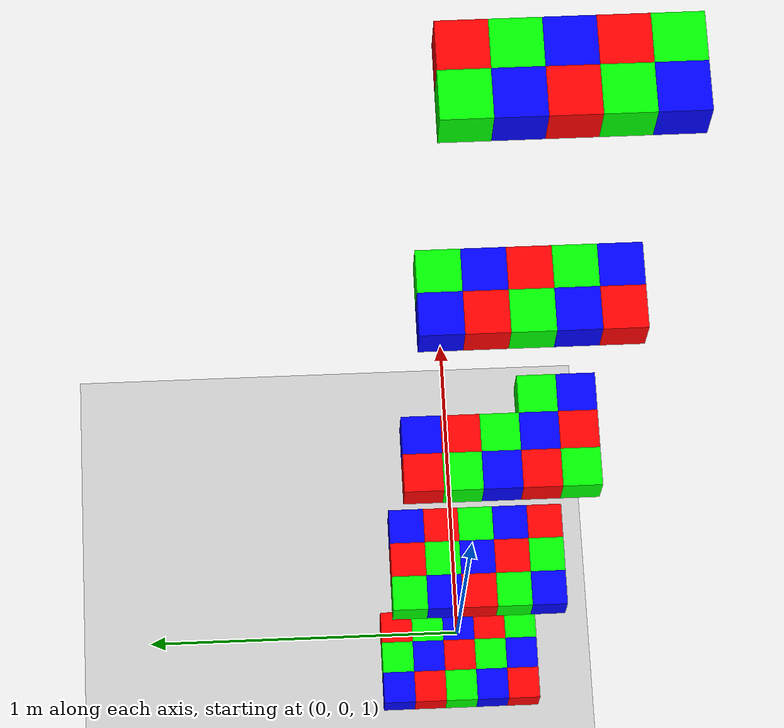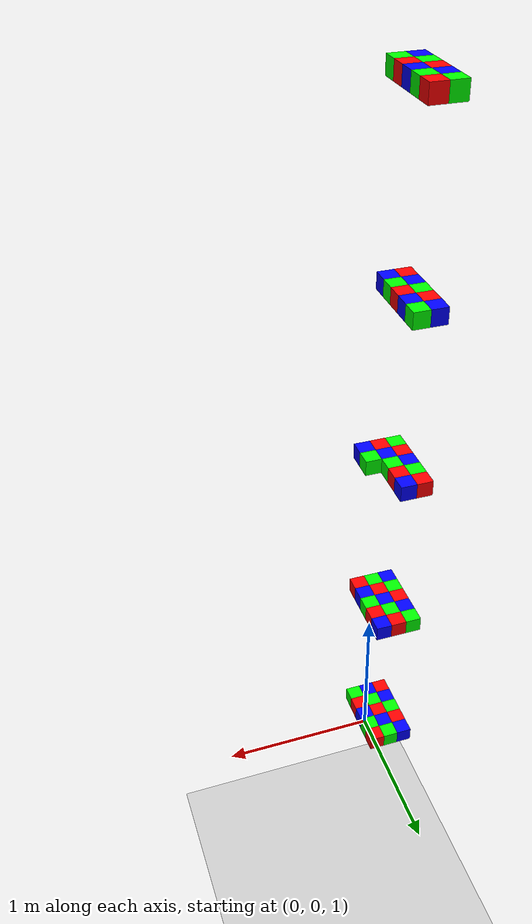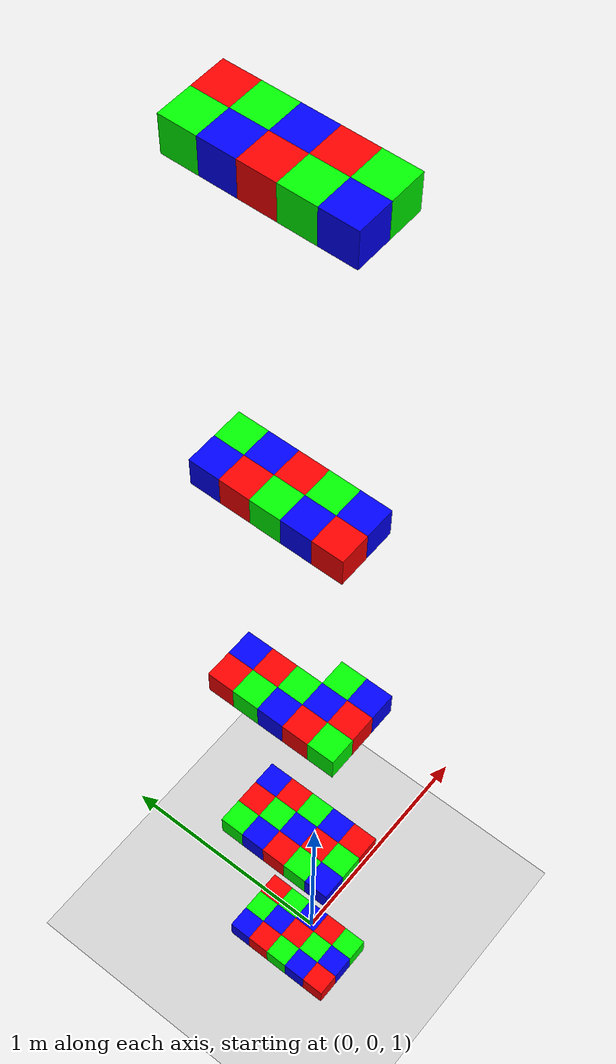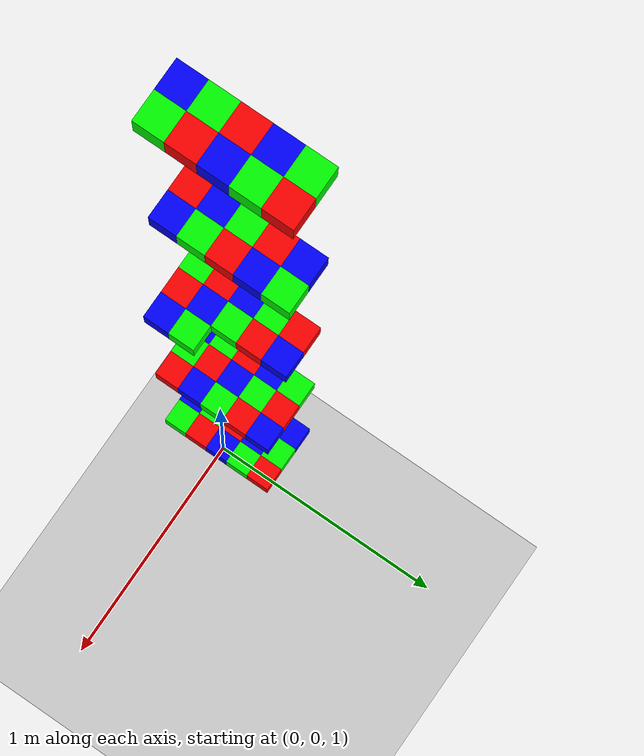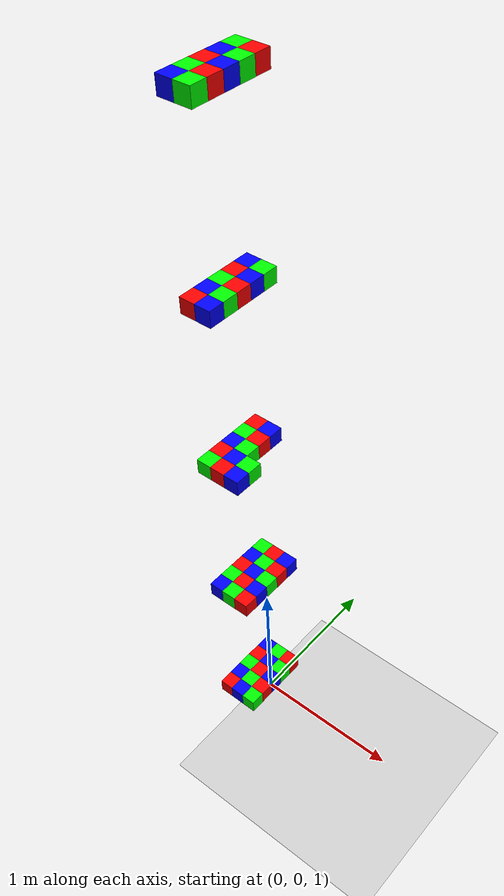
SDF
<sdf version="1.12">
 <world name="boxes_stack">
  <model name="ground_plane">
   <static>true</static>
   <link name="link">
    <collision name="collision"><geometry><plane><normal>0 0 1</normal></plane></geometry></collision>
    <visual name="visual">
     <geometry><plane><normal>0 0 1</normal><size>100 100</size></plane></geometry>
     <material>
      <ambient>0.8 0.8 0.8 1</ambient>
      <diffuse>0.8 0.8 0.8 1</diffuse>
      <specular>0.8 0.8 0.8 1</specular>
     </material>
    </visual>
   </link>
  </model>
  <model name="box_0">
   <pose>-0.2 -0.2 1.05 0 0 0</pose>
   <link name="box_link">
    <inertial auto="true"/>
    <collision name="box_collision">
     <density>1000</density>
     <geometry><box><size>0.1 0.1 0.1</size></box></geometry>
    </collision>
    <visual name="box_visual">
     <geometry><box><size>0.1 0.1 0.1</size></box></geometry>
     <material>
      <ambient>1 0 0 1</ambient>
      <diffuse>1 0 0 1</diffuse>
      <specular>1 1 1 1</specular>
      <pbr><metal><metalness>0.1</metalness><roughness>0.3</roughness></metal></pbr>
     </material>
    </visual>
   </link>
  </model>
  <model name="box_1">
   <pose>-0.2 -0.1 1.05 0 0 0</pose>
   <link name="box_link">
    <inertial auto="true"/>
    <collision name="box_collision">
     <density>1000</density>
     <geometry><box><size>0.1 0.1 0.1</size></box></geometry>
    </collision>
    <visual name="box_visual">
     <geometry><box><size>0.1 0.1 0.1</size></box></geometry>
     <material>
      <ambient>0 0 1 1</ambient>
      <diffuse>0 0 1 1</diffuse>
      <specular>1 1 1 1</specular>
      <pbr><metal><metalness>0.1</metalness><roughness>0.3</roughness></metal></pbr>
     </material>
    </visual>
   </link>
  </model>
  <model name="box_2">
   <pose>-0.2 0 1.05 0 0 0</pose>
   <link name="box_link">
    <inertial auto="true"/>
    <collision name="box_collision">
     <density>1000</density>
     <geometry><box><size>0.1 0.1 0.1</size></box></geometry>
    </collision>
    <visual name="box_visual">
     <geometry><box><size>0.1 0.1 0.1</size></box></geometry>
     <material>
      <ambient>0 1 0 1</ambient>
      <diffuse>0 1 0 1</diffuse>
      <specular>1 1 1 1</specular>
      <pbr><metal><metalness>0.1</metalness><roughness>0.3</roughness></metal></pbr>
     </material>
    </visual>
   </link>
  </model>
  <model name="box_3">
   <pose>-0.2 0.1 1.05 0 0 0</pose>
   <link name="box_link">
    <inertial auto="true"/>
    <collision name="box_collision">
     <density>1000</density>
     <geometry><box><size>0.1 0.1 0.1</size></box></geometry>
    </collision>
    <visual name="box_visual">
     <geometry><box><size>0.1 0.1 0.1</size></box></geometry>
     <material>
      <ambient>1 0 0 1</ambient>
      <diffuse>1 0 0 1</diffuse>
      <specular>1 1 1 1</specular>
      <pbr><metal><metalness>0.1</metalness><roughness>0.3</roughness></metal></pbr>
     </material>
    </visual>
   </link>
  </model>
  <model name="box_4">
   <pose>-0.2 0.2 1.05 0 0 0</pose>
   <link name="box_link">
    <inertial auto="true"/>
    <collision name="box_collision">
     <density>1000</density>
     <geometry><box><size>0.1 0.1 0.1</size></box></geometry>
    </collision>
    <visual name="box_visual">
     <geometry><box><size>0.1 0.1 0.1</size></box></geometry>
     <material>
      <ambient>0 0 1 1</ambient>
      <diffuse>0 0 1 1</diffuse>
      <specular>1 1 1 1</specular>
      <pbr><metal><metalness>0.1</metalness><roughness>0.3</roughness></metal></pbr>
     </material>
    </visual>
   </link>
  </model>
  <model name="box_5">
   <pose>-0.1 -0.2 1.05 0 0 0</pose>
   <link name="box_link">
    <inertial auto="true"/>
    <collision name="box_collision">
     <density>1000</density>
     <geometry><box><size>0.1 0.1 0.1</size></box></geometry>
    </collision>
    <visual name="box_visual">
     <geometry><box><size>0.1 0.1 0.1</size></box></geometry>
     <material>
      <ambient>0 0 1 1</ambient>
      <diffuse>0 0 1 1</diffuse>
      <specular>1 1 1 1</specular>
      <pbr><metal><metalness>0.1</metalness><roughness>0.3</roughness></metal></pbr>
     </material>
    </visual>
   </link>
  </model>
  <model name="box_6">
   <pose>-0.1 -0.1 1.05 0 0 0</pose>
   <link name="box_link">
    <inertial auto="true"/>
    <collision name="box_collision">
     <density>1000</density>
     <geometry><box><size>0.1 0.1 0.1</size></box></geometry>
    </collision>
    <visual name="box_visual">
     <geometry><box><size>0.1 0.1 0.1</size></box></geometry>
     <material>
      <ambient>0 1 0 1</ambient>
      <diffuse>0 1 0 1</diffuse>
      <specular>1 1 1 1</specular>
      <pbr><metal><metalness>0.1</metalness><roughness>0.3</roughness></metal></pbr>
     </material>
    </visual>
   </link>
  </model>
  <model name="box_7">
   <pose>-0.1 0 1.05 0 0 0</pose>
   <link name="box_link">
    <inertial auto="true"/>
    <collision name="box_collision">
     <density>1000</density>
     <geometry><box><size>0.1 0.1 0.1</size></box></geometry>
    </collision>
    <visual name="box_visual">
     <geometry><box><size>0.1 0.1 0.1</size></box></geometry>
     <material>
      <ambient>1 0 0 1</ambient>
      <diffuse>1 0 0 1</diffuse>
      <specular>1 1 1 1</specular>
      <pbr><metal><metalness>0.1</metalness><roughness>0.3</roughness></metal></pbr>
     </material>
    </visual>
   </link>
  </model>
  <model name="box_8">
   <pose>-0.1 0.1 1.05 0 0 0</pose>
   <link name="box_link">
    <inertial auto="true"/>
    <collision name="box_collision">
     <density>1000</density>
     <geometry><box><size>0.1 0.1 0.1</size></box></geometry>
    </collision>
    <visual name="box_visual">
     <geometry><box><size>0.1 0.1 0.1</size></box></geometry>
     <material>
      <ambient>0 0 1 1</ambient>
      <diffuse>0 0 1 1</diffuse>
      <specular>1 1 1 1</specular>
      <pbr><metal><metalness>0.1</metalness><roughness>0.3</roughness></metal></pbr>
     </material>
    </visual>
   </link>
  </model>
  <model name="box_9">
   <pose>-0.1 0.2 1.05 0 0 0</pose>
   <link name="box_link">
    <inertial auto="true"/>
    <collision name="box_collision">
     <density>1000</density>
     <geometry><box><size>0.1 0.1 0.1</size></box></geometry>
    </collision>
    <visual name="box_visual">
     <geometry><box><size>0.1 0.1 0.1</size></box></geometry>
     <material>
      <ambient>0 1 0 1</ambient>
      <diffuse>0 1 0 1</diffuse>
      <specular>1 1 1 1</specular>
      <pbr><metal><metalness>0.1</metalness><roughness>0.3</roughness></metal></pbr>
     </material>
    </visual>
   </link>
  </model>
  <model name="box_10">
   <pose>0 -0.2 1.05 0 0 0</pose>
   <link name="box_link">
    <inertial auto="true"/>
    <collision name="box_collision">
     <density>1000</density>
     <geometry><box><size>0.1 0.1 0.1</size></box></geometry>
    </collision>
    <visual name="box_visual">
     <geometry><box><size>0.1 0.1 0.1</size></box></geometry>
     <material>
      <ambient>0 1 0 1</ambient>
      <diffuse>0 1 0 1</diffuse>
      <specular>1 1 1 1</specular>
      <pbr><metal><metalness>0.1</metalness><roughness>0.3</roughness></metal></pbr>
     </material>
    </visual>
   </link>
  </model>
  <model name="box_11">
   <pose>0 -0.1 1.05 0 0 0</pose>
   <link name="box_link">
    <inertial auto="true"/>
    <collision name="box_collision">
     <density>1000</density>
     <geometry><box><size>0.1 0.1 0.1</size></box></geometry>
    </collision>
    <visual name="box_visual">
     <geometry><box><size>0.1 0.1 0.1</size></box></geometry>
     <material>
      <ambient>1 0 0 1</ambient>
      <diffuse>1 0 0 1</diffuse>
      <specular>1 1 1 1</specular>
      <pbr><metal><metalness>0.1</metalness><roughness>0.3</roughness></metal></pbr>
     </material>
    </visual>
   </link>
  </model>
  <model name="box_12">
   <pose>0 0 1.05 0 0 0</pose>
   <link name="box_link">
    <inertial auto="true"/>
    <collision name="box_collision">
     <density>1000</density>
     <geometry><box><size>0.1 0.1 0.1</size></box></geometry>
    </collision>
    <visual name="box_visual">
     <geometry><box><size>0.1 0.1 0.1</size></box></geometry>
     <material>
      <ambient>0 0 1 1</ambient>
      <diffuse>0 0 1 1</diffuse>
      <specular>1 1 1 1</specular>
      <pbr><metal><metalness>0.1</metalness><roughness>0.3</roughness></metal></pbr>
     </material>
    </visual>
   </link>
  </model>
  <model name="box_13">
   <pose>0 0.1 1.05 0 0 0</pose>
   <link name="box_link">
    <inertial auto="true"/>
    <collision name="box_collision">
     <density>1000</density>
     <geometry><box><size>0.1 0.1 0.1</size></box></geometry>
    </collision>
    <visual name="box_visual">
     <geometry><box><size>0.1 0.1 0.1</size></box></geometry>
     <material>
      <ambient>0 1 0 1</ambient>
      <diffuse>0 1 0 1</diffuse>
      <specular>1 1 1 1</specular>
      <pbr><metal><metalness>0.1</metalness><roughness>0.3</roughness></metal></pbr>
     </material>
    </visual>
   </link>
  </model>
  <model name="box_14">
   <pose>0 0.2 1.05 0 0 0</pose>
   <link name="box_link">
    <inertial auto="true"/>
    <collision name="box_collision">
     <density>1000</density>
     <geometry><box><size>0.1 0.1 0.1</size></box></geometry>
    </collision>
    <visual name="box_visual">
     <geometry><box><size>0.1 0.1 0.1</size></box></geometry>
     <material>
      <ambient>1 0 0 1</ambient>
      <diffuse>1 0 0 1</diffuse>
      <specular>1 1 1 1</specular>
      <pbr><metal><metalness>0.1</metalness><roughness>0.3</roughness></metal></pbr>
     </material>
    </visual>
   </link>
  </model>
  <model name="box_25">
   <pose>-0.2 -0.2 2.15 0 0 0</pose>
   <link name="box_link">
    <inertial auto="true"/>
    <collision name="box_collision">
     <density>1000</density>
     <geometry><box><size>0.1 0.1 0.1</size></box></geometry>
    </collision>
    <visual name="box_visual">
     <geometry><box><size>0.1 0.1 0.1</size></box></geometry>
     <material>
      <ambient>0 0 1 1</ambient>
      <diffuse>0 0 1 1</diffuse>
      <specular>1 1 1 1</specular>
      <pbr><metal><metalness>0.1</metalness><roughness>0.3</roughness></metal></pbr>
     </material>
    </visual>
   </link>
  </model>
  <model name="box_26">
   <pose>-0.2 -0.1 2.15 0 0 0</pose>
   <link name="box_link">
    <inertial auto="true"/>
    <collision name="box_collision">
     <density>1000</density>
     <geometry><box><size>0.1 0.1 0.1</size></box></geometry>
    </collision>
    <visual name="box_visual">
     <geometry><box><size>0.1 0.1 0.1</size></box></geometry>
     <material>
      <ambient>0 1 0 1</ambient>
      <diffuse>0 1 0 1</diffuse>
      <specular>1 1 1 1</specular>
      <pbr><metal><metalness>0.1</metalness><roughness>0.3</roughness></metal></pbr>
     </material>
    </visual>
   </link>
  </model>
  <model name="box_27">
   <pose>-0.2 0 2.15 0 0 0</pose>
   <link name="box_link">
    <inertial auto="true"/>
    <collision name="box_collision">
     <density>1000</density>
     <geometry><box><size>0.1 0.1 0.1</size></box></geometry>
    </collision>
    <visual name="box_visual">
     <geometry><box><size>0.1 0.1 0.1</size></box></geometry>
     <material>
      <ambient>1 0 0 1</ambient>
      <diffuse>1 0 0 1</diffuse>
      <specular>1 1 1 1</specular>
      <pbr><metal><metalness>0.1</metalness><roughness>0.3</roughness></metal></pbr>
     </material>
    </visual>
   </link>
  </model>
  <model name="box_28">
   <pose>-0.2 0.1 2.15 0 0 0</pose>
   <link name="box_link">
    <inertial auto="true"/>
    <collision name="box_collision">
     <density>1000</density>
     <geometry><box><size>0.1 0.1 0.1</size></box></geometry>
    </collision>
    <visual name="box_visual">
     <geometry><box><size>0.1 0.1 0.1</size></box></geometry>
     <material>
      <ambient>0 0 1 1</ambient>
      <diffuse>0 0 1 1</diffuse>
      <specular>1 1 1 1</specular>
      <pbr><metal><metalness>0.1</metalness><roughness>0.3</roughness></metal></pbr>
     </material>
    </visual>
   </link>
  </model>
  <model name="box_29">
   <pose>-0.2 0.2 2.15 0 0 0</pose>
   <link name="box_link">
    <inertial auto="true"/>
    <collision name="box_collision">
     <density>1000</density>
     <geometry><box><size>0.1 0.1 0.1</size></box></geometry>
    </collision>
    <visual name="box_visual">
     <geometry><box><size>0.1 0.1 0.1</size></box></geometry>
     <material>
      <ambient>0 1 0 1</ambient>
      <diffuse>0 1 0 1</diffuse>
      <specular>1 1 1 1</specular>
      <pbr><metal><metalness>0.1</metalness><roughness>0.3</roughness></metal></pbr>
     </material>
    </visual>
   </link>
  </model>
  <model name="box_30">
   <pose>-0.1 -0.2 2.15 0 0 0</pose>
   <link name="box_link">
    <inertial auto="true"/>
    <collision name="box_collision">
     <density>1000</density>
     <geometry><box><size>0.1 0.1 0.1</size></box></geometry>
    </collision>
    <visual name="box_visual">
     <geometry><box><size>0.1 0.1 0.1</size></box></geometry>
     <material>
      <ambient>0 1 0 1</ambient>
      <diffuse>0 1 0 1</diffuse>
      <specular>1 1 1 1</specular>
      <pbr><metal><metalness>0.1</metalness><roughness>0.3</roughness></metal></pbr>
     </material>
    </visual>
   </link>
  </model>
  <model name="box_31">
   <pose>-0.1 -0.1 2.15 0 0 0</pose>
   <link name="box_link">
    <inertial auto="true"/>
    <collision name="box_collision">
     <density>1000</density>
     <geometry><box><size>0.1 0.1 0.1</size></box></geometry>
    </collision>
    <visual name="box_visual">
     <geometry><box><size>0.1 0.1 0.1</size></box></geometry>
     <material>
      <ambient>1 0 0 1</ambient>
      <diffuse>1 0 0 1</diffuse>
      <specular>1 1 1 1</specular>
      <pbr><metal><metalness>0.1</metalness><roughness>0.3</roughness></metal></pbr>
     </material>
    </visual>
   </link>
  </model>
  <model name="box_32">
   <pose>-0.1 0 2.15 0 0 0</pose>
   <link name="box_link">
    <inertial auto="true"/>
    <collision name="box_collision">
     <density>1000</density>
     <geometry><box><size>0.1 0.1 0.1</size></box></geometry>
    </collision>
    <visual name="box_visual">
     <geometry><box><size>0.1 0.1 0.1</size></box></geometry>
     <material>
      <ambient>0 0 1 1</ambient>
      <diffuse>0 0 1 1</diffuse>
      <specular>1 1 1 1</specular>
      <pbr><metal><metalness>0.1</metalness><roughness>0.3</roughness></metal></pbr>
     </material>
    </visual>
   </link>
  </model>
  <model name="box_33">
   <pose>-0.1 0.1 2.15 0 0 0</pose>
   <link name="box_link">
    <inertial auto="true"/>
    <collision name="box_collision">
     <density>1000</density>
     <geometry><box><size>0.1 0.1 0.1</size></box></geometry>
    </collision>
    <visual name="box_visual">
     <geometry><box><size>0.1 0.1 0.1</size></box></geometry>
     <material>
      <ambient>0 1 0 1</ambient>
      <diffuse>0 1 0 1</diffuse>
      <specular>1 1 1 1</specular>
      <pbr><metal><metalness>0.1</metalness><roughness>0.3</roughness></metal></pbr>
     </material>
    </visual>
   </link>
  </model>
  <model name="box_34">
   <pose>-0.1 0.2 2.15 0 0 0</pose>
   <link name="box_link">
    <inertial auto="true"/>
    <collision name="box_collision">
     <density>1000</density>
     <geometry><box><size>0.1 0.1 0.1</size></box></geometry>
    </collision>
    <visual name="box_visual">
     <geometry><box><size>0.1 0.1 0.1</size></box></geometry>
     <material>
      <ambient>1 0 0 1</ambient>
      <diffuse>1 0 0 1</diffuse>
      <specular>1 1 1 1</specular>
      <pbr><metal><metalness>0.1</metalness><roughness>0.3</roughness></metal></pbr>
     </material>
    </visual>
   </link>
  </model>
  <model name="box_35">
   <pose>0 -0.2 2.15 0 0 0</pose>
   <link name="box_link">
    <inertial auto="true"/>
    <collision name="box_collision">
     <density>1000</density>
     <geometry><box><size>0.1 0.1 0.1</size></box></geometry>
    </collision>
    <visual name="box_visual">
     <geometry><box><size>0.1 0.1 0.1</size></box></geometry>
     <material>
      <ambient>1 0 0 1</ambient>
      <diffuse>1 0 0 1</diffuse>
      <specular>1 1 1 1</specular>
      <pbr><metal><metalness>0.1</metalness><roughness>0.3</roughness></metal></pbr>
     </material>
    </visual>
   </link>
  </model>
  <model name="box_36">
   <pose>0 -0.1 2.15 0 0 0</pose>
   <link name="box_link">
    <inertial auto="true"/>
    <collision name="box_collision">
     <density>1000</density>
     <geometry><box><size>0.1 0.1 0.1</size></box></geometry>
    </collision>
    <visual name="box_visual">
     <geometry><box><size>0.1 0.1 0.1</size></box></geometry>
     <material>
      <ambient>0 0 1 1</ambient>
      <diffuse>0 0 1 1</diffuse>
      <specular>1 1 1 1</specular>
      <pbr><metal><metalness>0.1</metalness><roughness>0.3</roughness></metal></pbr>
     </material>
    </visual>
   </link>
  </model>
  <model name="box_37">
   <pose>0 0 2.15 0 0 0</pose>
   <link name="box_link">
    <inertial auto="true"/>
    <collision name="box_collision">
     <density>1000</density>
     <geometry><box><size>0.1 0.1 0.1</size></box></geometry>
    </collision>
    <visual name="box_visual">
     <geometry><box><size>0.1 0.1 0.1</size></box></geometry>
     <material>
      <ambient>0 1 0 1</ambient>
      <diffuse>0 1 0 1</diffuse>
      <specular>1 1 1 1</specular>
      <pbr><metal><metalness>0.1</metalness><roughness>0.3</roughness></metal></pbr>
     </material>
    </visual>
   </link>
  </model>
  <model name="box_38">
   <pose>0 0.1 2.15 0 0 0</pose>
   <link name="box_link">
    <inertial auto="true"/>
    <collision name="box_collision">
     <density>1000</density>
     <geometry><box><size>0.1 0.1 0.1</size></box></geometry>
    </collision>
    <visual name="box_visual">
     <geometry><box><size>0.1 0.1 0.1</size></box></geometry>
     <material>
      <ambient>1 0 0 1</ambient>
      <diffuse>1 0 0 1</diffuse>
      <specular>1 1 1 1</specular>
      <pbr><metal><metalness>0.1</metalness><roughness>0.3</roughness></metal></pbr>
     </material>
    </visual>
   </link>
  </model>
  <model name="box_39">
   <pose>0 0.2 2.15 0 0 0</pose>
   <link name="box_link">
    <inertial auto="true"/>
    <collision name="box_collision">
     <density>1000</density>
     <geometry><box><size>0.1 0.1 0.1</size></box></geometry>
    </collision>
    <visual name="box_visual">
     <geometry><box><size>0.1 0.1 0.1</size></box></geometry>
     <material>
      <ambient>0 0 1 1</ambient>
      <diffuse>0 0 1 1</diffuse>
      <specular>1 1 1 1</specular>
      <pbr><metal><metalness>0.1</metalness><roughness>0.3</roughness></metal></pbr>
     </material>
    </visual>
   </link>
  </model>
  <model name="box_50">
   <pose>-0.2 -0.2 3.25 0 0 0</pose>
   <link name="box_link">
    <inertial auto="true"/>
    <collision name="box_collision">
     <density>1000</density>
     <geometry><box><size>0.1 0.1 0.1</size></box></geometry>
    </collision>
    <visual name="box_visual">
     <geometry><box><size>0.1 0.1 0.1</size></box></geometry>
     <material>
      <ambient>0 1 0 1</ambient>
      <diffuse>0 1 0 1</diffuse>
      <specular>1 1 1 1</specular>
      <pbr><metal><metalness>0.1</metalness><roughness>0.3</roughness></metal></pbr>
     </material>
    </visual>
   </link>
  </model>
  <model name="box_51">
   <pose>-0.2 -0.1 3.25 0 0 0</pose>
   <link name="box_link">
    <inertial auto="true"/>
    <collision name="box_collision">
     <density>1000</density>
     <geometry><box><size>0.1 0.1 0.1</size></box></geometry>
    </collision>
    <visual name="box_visual">
     <geometry><box><size>0.1 0.1 0.1</size></box></geometry>
     <material>
      <ambient>1 0 0 1</ambient>
      <diffuse>1 0 0 1</diffuse>
      <specular>1 1 1 1</specular>
      <pbr><metal><metalness>0.1</metalness><roughness>0.3</roughness></metal></pbr>
     </material>
    </visual>
   </link>
  </model>
  <model name="box_52">
   <pose>-0.2 0 3.25 0 0 0</pose>
   <link name="box_link">
    <inertial auto="true"/>
    <collision name="box_collision">
     <density>1000</density>
     <geometry><box><size>0.1 0.1 0.1</size></box></geometry>
    </collision>
    <visual name="box_visual">
     <geometry><box><size>0.1 0.1 0.1</size></box></geometry>
     <material>
      <ambient>0 0 1 1</ambient>
      <diffuse>0 0 1 1</diffuse>
      <specular>1 1 1 1</specular>
      <pbr><metal><metalness>0.1</metalness><roughness>0.3</roughness></metal></pbr>
     </material>
    </visual>
   </link>
  </model>
  <model name="box_53">
   <pose>-0.2 0.1 3.25 0 0 0</pose>
   <link name="box_link">
    <inertial auto="true"/>
    <collision name="box_collision">
     <density>1000</density>
     <geometry><box><size>0.1 0.1 0.1</size></box></geometry>
    </collision>
    <visual name="box_visual">
     <geometry><box><size>0.1 0.1 0.1</size></box></geometry>
     <material>
      <ambient>0 1 0 1</ambient>
      <diffuse>0 1 0 1</diffuse>
      <specular>1 1 1 1</specular>
      <pbr><metal><metalness>0.1</metalness><roughness>0.3</roughness></metal></pbr>
     </material>
    </visual>
   </link>
  </model>
  <model name="box_54">
   <pose>-0.2 0.2 3.25 0 0 0</pose>
   <link name="box_link">
    <inertial auto="true"/>
    <collision name="box_collision">
     <density>1000</density>
     <geometry><box><size>0.1 0.1 0.1</size></box></geometry>
    </collision>
    <visual name="box_visual">
     <geometry><box><size>0.1 0.1 0.1</size></box></geometry>
     <material>
      <ambient>1 0 0 1</ambient>
      <diffuse>1 0 0 1</diffuse>
      <specular>1 1 1 1</specular>
      <pbr><metal><metalness>0.1</metalness><roughness>0.3</roughness></metal></pbr>
     </material>
    </visual>
   </link>
  </model>
  <model name="box_55">
   <pose>-0.1 -0.2 3.25 0 0 0</pose>
   <link name="box_link">
    <inertial auto="true"/>
    <collision name="box_collision">
     <density>1000</density>
     <geometry><box><size>0.1 0.1 0.1</size></box></geometry>
    </collision>
    <visual name="box_visual">
     <geometry><box><size>0.1 0.1 0.1</size></box></geometry>
     <material>
      <ambient>1 0 0 1</ambient>
      <diffuse>1 0 0 1</diffuse>
      <specular>1 1 1 1</specular>
      <pbr><metal><metalness>0.1</metalness><roughness>0.3</roughness></metal></pbr>
     </material>
    </visual>
   </link>
  </model>
  <model name="box_56">
   <pose>-0.1 -0.1 3.25 0 0 0</pose>
   <link name="box_link">
    <inertial auto="true"/>
    <collision name="box_collision">
     <density>1000</density>
     <geometry><box><size>0.1 0.1 0.1</size></box></geometry>
    </collision>
    <visual name="box_visual">
     <geometry><box><size>0.1 0.1 0.1</size></box></geometry>
     <material>
      <ambient>0 0 1 1</ambient>
      <diffuse>0 0 1 1</diffuse>
      <specular>1 1 1 1</specular>
      <pbr><metal><metalness>0.1</metalness><roughness>0.3</roughness></metal></pbr>
     </material>
    </visual>
   </link>
  </model>
  <model name="box_57">
   <pose>-0.1 0 3.25 0 0 0</pose>
   <link name="box_link">
    <inertial auto="true"/>
    <collision name="box_collision">
     <density>1000</density>
     <geometry><box><size>0.1 0.1 0.1</size></box></geometry>
    </collision>
    <visual name="box_visual">
     <geometry><box><size>0.1 0.1 0.1</size></box></geometry>
     <material>
      <ambient>0 1 0 1</ambient>
      <diffuse>0 1 0 1</diffuse>
      <specular>1 1 1 1</specular>
      <pbr><metal><metalness>0.1</metalness><roughness>0.3</roughness></metal></pbr>
     </material>
    </visual>
   </link>
  </model>
  <model name="box_58">
   <pose>-0.1 0.1 3.25 0 0 0</pose>
   <link name="box_link">
    <inertial auto="true"/>
    <collision name="box_collision">
     <density>1000</density>
     <geometry><box><size>0.1 0.1 0.1</size></box></geometry>
    </collision>
    <visual name="box_visual">
     <geometry><box><size>0.1 0.1 0.1</size></box></geometry>
     <material>
      <ambient>1 0 0 1</ambient>
      <diffuse>1 0 0 1</diffuse>
      <specular>1 1 1 1</specular>
      <pbr><metal><metalness>0.1</metalness><roughness>0.3</roughness></metal></pbr>
     </material>
    </visual>
   </link>
  </model>
  <model name="box_59">
   <pose>-0.1 0.2 3.25 0 0 0</pose>
   <link name="box_link">
    <inertial auto="true"/>
    <collision name="box_collision">
     <density>1000</density>
     <geometry><box><size>0.1 0.1 0.1</size></box></geometry>
    </collision>
    <visual name="box_visual">
     <geometry><box><size>0.1 0.1 0.1</size></box></geometry>
     <material>
      <ambient>0 0 1 1</ambient>
      <diffuse>0 0 1 1</diffuse>
      <specular>1 1 1 1</specular>
      <pbr><metal><metalness>0.1</metalness><roughness>0.3</roughness></metal></pbr>
     </material>
    </visual>
   </link>
  </model>
  <model name="box_60">
   <pose>0 -0.2 3.25 0 0 0</pose>
   <link name="box_link">
    <inertial auto="true"/>
    <collision name="box_collision">
     <density>1000</density>
     <geometry><box><size>0.1 0.1 0.1</size></box></geometry>
    </collision>
    <visual name="box_visual">
     <geometry><box><size>0.1 0.1 0.1</size></box></geometry>
     <material>
      <ambient>0 0 1 1</ambient>
      <diffuse>0 0 1 1</diffuse>
      <specular>1 1 1 1</specular>
      <pbr><metal><metalness>0.1</metalness><roughness>0.3</roughness></metal></pbr>
     </material>
    </visual>
   </link>
  </model>
  <model name="box_61">
   <pose>0 -0.1 3.25 0 0 0</pose>
   <link name="box_link">
    <inertial auto="true"/>
    <collision name="box_collision">
     <density>1000</density>
     <geometry><box><size>0.1 0.1 0.1</size></box></geometry>
    </collision>
    <visual name="box_visual">
     <geometry><box><size>0.1 0.1 0.1</size></box></geometry>
     <material>
      <ambient>0 1 0 1</ambient>
      <diffuse>0 1 0 1</diffuse>
      <specular>1 1 1 1</specular>
      <pbr><metal><metalness>0.1</metalness><roughness>0.3</roughness></metal></pbr>
     </material>
    </visual>
   </link>
  </model>
  <model name="box_75">
   <pose>-0.2 -0.2 4.35 0 0 0</pose>
   <link name="box_link">
    <inertial auto="true"/>
    <collision name="box_collision">
     <density>1000</density>
     <geometry><box><size>0.1 0.1 0.1</size></box></geometry>
    </collision>
    <visual name="box_visual">
     <geometry><box><size>0.1 0.1 0.1</size></box></geometry>
     <material>
      <ambient>1 0 0 1</ambient>
      <diffuse>1 0 0 1</diffuse>
      <specular>1 1 1 1</specular>
      <pbr><metal><metalness>0.1</metalness><roughness>0.3</roughness></metal></pbr>
     </material>
    </visual>
   </link>
  </model>
  <model name="box_76">
   <pose>-0.2 -0.1 4.35 0 0 0</pose>
   <link name="box_link">
    <inertial auto="true"/>
    <collision name="box_collision">
     <density>1000</density>
     <geometry><box><size>0.1 0.1 0.1</size></box></geometry>
    </collision>
    <visual name="box_visual">
     <geometry><box><size>0.1 0.1 0.1</size></box></geometry>
     <material>
      <ambient>0 0 1 1</ambient>
      <diffuse>0 0 1 1</diffuse>
      <specular>1 1 1 1</specular>
      <pbr><metal><metalness>0.1</metalness><roughness>0.3</roughness></metal></pbr>
     </material>
    </visual>
   </link>
  </model>
  <model name="box_77">
   <pose>-0.2 0 4.35 0 0 0</pose>
   <link name="box_link">
    <inertial auto="true"/>
    <collision name="box_collision">
     <density>1000</density>
     <geometry><box><size>0.1 0.1 0.1</size></box></geometry>
    </collision>
    <visual name="box_visual">
     <geometry><box><size>0.1 0.1 0.1</size></box></geometry>
     <material>
      <ambient>0 1 0 1</ambient>
      <diffuse>0 1 0 1</diffuse>
      <specular>1 1 1 1</specular>
      <pbr><metal><metalness>0.1</metalness><roughness>0.3</roughness></metal></pbr>
     </material>
    </visual>
   </link>
  </model>
  <model name="box_78">
   <pose>-0.2 0.1 4.35 0 0 0</pose>
   <link name="box_link">
    <inertial auto="true"/>
    <collision name="box_collision">
     <density>1000</density>
     <geometry><box><size>0.1 0.1 0.1</size></box></geometry>
    </collision>
    <visual name="box_visual">
     <geometry><box><size>0.1 0.1 0.1</size></box></geometry>
     <material>
      <ambient>1 0 0 1</ambient>
      <diffuse>1 0 0 1</diffuse>
      <specular>1 1 1 1</specular>
      <pbr><metal><metalness>0.1</metalness><roughness>0.3</roughness></metal></pbr>
     </material>
    </visual>
   </link>
  </model>
  <model name="box_79">
   <pose>-0.2 0.2 4.35 0 0 0</pose>
   <link name="box_link">
    <inertial auto="true"/>
    <collision name="box_collision">
     <density>1000</density>
     <geometry><box><size>0.1 0.1 0.1</size></box></geometry>
    </collision>
    <visual name="box_visual">
     <geometry><box><size>0.1 0.1 0.1</size></box></geometry>
     <material>
      <ambient>0 0 1 1</ambient>
      <diffuse>0 0 1 1</diffuse>
      <specular>1 1 1 1</specular>
      <pbr><metal><metalness>0.1</metalness><roughness>0.3</roughness></metal></pbr>
     </material>
    </visual>
   </link>
  </model>
  <model name="box_80">
   <pose>-0.1 -0.2 4.35 0 0 0</pose>
   <link name="box_link">
    <inertial auto="true"/>
    <collision name="box_collision">
     <density>1000</density>
     <geometry><box><size>0.1 0.1 0.1</size></box></geometry>
    </collision>
    <visual name="box_visual">
     <geometry><box><size>0.1 0.1 0.1</size></box></geometry>
     <material>
      <ambient>0 0 1 1</ambient>
      <diffuse>0 0 1 1</diffuse>
      <specular>1 1 1 1</specular>
      <pbr><metal><metalness>0.1</metalness><roughness>0.3</roughness></metal></pbr>
     </material>
    </visual>
   </link>
  </model>
  <model name="box_81">
   <pose>-0.1 -0.1 4.35 0 0 0</pose>
   <link name="box_link">
    <inertial auto="true"/>
    <collision name="box_collision">
     <density>1000</density>
     <geometry><box><size>0.1 0.1 0.1</size></box></geometry>
    </collision>
    <visual name="box_visual">
     <geometry><box><size>0.1 0.1 0.1</size></box></geometry>
     <material>
      <ambient>0 1 0 1</ambient>
      <diffuse>0 1 0 1</diffuse>
      <specular>1 1 1 1</specular>
      <pbr><metal><metalness>0.1</metalness><roughness>0.3</roughness></metal></pbr>
     </material>
    </visual>
   </link>
  </model>
  <model name="box_82">
   <pose>-0.1 0 4.35 0 0 0</pose>
   <link name="box_link">
    <inertial auto="true"/>
    <collision name="box_collision">
     <density>1000</density>
     <geometry><box><size>0.1 0.1 0.1</size></box></geometry>
    </collision>
    <visual name="box_visual">
     <geometry><box><size>0.1 0.1 0.1</size></box></geometry>
     <material>
      <ambient>1 0 0 1</ambient>
      <diffuse>1 0 0 1</diffuse>
      <specular>1 1 1 1</specular>
      <pbr><metal><metalness>0.1</metalness><roughness>0.3</roughness></metal></pbr>
     </material>
    </visual>
   </link>
  </model>
  <model name="box_83">
   <pose>-0.1 0.1 4.35 0 0 0</pose>
   <link name="box_link">
    <inertial auto="true"/>
    <collision name="box_collision">
     <density>1000</density>
     <geometry><box><size>0.1 0.1 0.1</size></box></geometry>
    </collision>
    <visual name="box_visual">
     <geometry><box><size>0.1 0.1 0.1</size></box></geometry>
     <material>
      <ambient>0 0 1 1</ambient>
      <diffuse>0 0 1 1</diffuse>
      <specular>1 1 1 1</specular>
      <pbr><metal><metalness>0.1</metalness><roughness>0.3</roughness></metal></pbr>
     </material>
    </visual>
   </link>
  </model>
  <model name="box_84">
   <pose>-0.1 0.2 4.35 0 0 0</pose>
   <link name="box_link">
    <inertial auto="true"/>
    <collision name="box_collision">
     <density>1000</density>
     <geometry><box><size>0.1 0.1 0.1</size></box></geometry>
    </collision>
    <visual name="box_visual">
     <geometry><box><size>0.1 0.1 0.1</size></box></geometry>
     <material>
      <ambient>0 1 0 1</ambient>
      <diffuse>0 1 0 1</diffuse>
      <specular>1 1 1 1</specular>
      <pbr><metal><metalness>0.1</metalness><roughness>0.3</roughness></metal></pbr>
     </material>
    </visual>
   </link>
  </model>
  <model name="box_100">
   <pose>-0.2 -0.2 5.45 0 0 0</pose>
   <link name="box_link">
    <inertial auto="true"/>
    <collision name="box_collision">
     <density>1000</density>
     <geometry><box><size>0.1 0.1 0.1</size></box></geometry>
    </collision>
    <visual name="box_visual">
     <geometry><box><size>0.1 0.1 0.1</size></box></geometry>
     <material>
      <ambient>0 0 1 1</ambient>
      <diffuse>0 0 1 1</diffuse>
      <specular>1 1 1 1</specular>
      <pbr><metal><metalness>0.1</metalness><roughness>0.3</roughness></metal></pbr>
     </material>
    </visual>
   </link>
  </model>
  <model name="box_101">
   <pose>-0.2 -0.1 5.45 0 0 0</pose>
   <link name="box_link">
    <inertial auto="true"/>
    <collision name="box_collision">
     <density>1000</density>
     <geometry><box><size>0.1 0.1 0.1</size></box></geometry>
    </collision>
    <visual name="box_visual">
     <geometry><box><size>0.1 0.1 0.1</size></box></geometry>
     <material>
      <ambient>0 1 0 1</ambient>
      <diffuse>0 1 0 1</diffuse>
      <specular>1 1 1 1</specular>
      <pbr><metal><metalness>0.1</metalness><roughness>0.3</roughness></metal></pbr>
     </material>
    </visual>
   </link>
  </model>
  <model name="box_102">
   <pose>-0.2 0 5.45 0 0 0</pose>
   <link name="box_link">
    <inertial auto="true"/>
    <collision name="box_collision">
     <density>1000</density>
     <geometry><box><size>0.1 0.1 0.1</size></box></geometry>
    </collision>
    <visual name="box_visual">
     <geometry><box><size>0.1 0.1 0.1</size></box></geometry>
     <material>
      <ambient>1 0 0 1</ambient>
      <diffuse>1 0 0 1</diffuse>
      <specular>1 1 1 1</specular>
      <pbr><metal><metalness>0.1</metalness><roughness>0.3</roughness></metal></pbr>
     </material>
    </visual>
   </link>
  </model>
  <model name="box_103">
   <pose>-0.2 0.1 5.45 0 0 0</pose>
   <link name="box_link">
    <inertial auto="true"/>
    <collision name="box_collision">
     <density>1000</density>
     <geometry><box><size>0.1 0.1 0.1</size></box></geometry>
    </collision>
    <visual name="box_visual">
     <geometry><box><size>0.1 0.1 0.1</size></box></geometry>
     <material>
      <ambient>0 0 1 1</ambient>
      <diffuse>0 0 1 1</diffuse>
      <specular>1 1 1 1</specular>
      <pbr><metal><metalness>0.1</metalness><roughness>0.3</roughness></metal></pbr>
     </material>
    </visual>
   </link>
  </model>
  <model name="box_104">
   <pose>-0.2 0.2 5.45 0 0 0</pose>
   <link name="box_link">
    <inertial auto="true"/>
    <collision name="box_collision">
     <density>1000</density>
     <geometry><box><size>0.1 0.1 0.1</size></box></geometry>
    </collision>
    <visual name="box_visual">
     <geometry><box><size>0.1 0.1 0.1</size></box></geometry>
     <material>
      <ambient>0 1 0 1</ambient>
      <diffuse>0 1 0 1</diffuse>
      <specular>1 1 1 1</specular>
      <pbr><metal><metalness>0.1</metalness><roughness>0.3</roughness></metal></pbr>
     </material>
    </visual>
   </link>
  </model>
  <model name="box_105">
   <pose>-0.1 -0.2 5.45 0 0 0</pose>
   <link name="box_link">
    <inertial auto="true"/>
    <collision name="box_collision">
     <density>1000</density>
     <geometry><box><size>0.1 0.1 0.1</size></box></geometry>
    </collision>
    <visual name="box_visual">
     <geometry><box><size>0.1 0.1 0.1</size></box></geometry>
     <material>
      <ambient>0 1 0 1</ambient>
      <diffuse>0 1 0 1</diffuse>
      <specular>1 1 1 1</specular>
      <pbr><metal><metalness>0.1</metalness><roughness>0.3</roughness></metal></pbr>
     </material>
    </visual>
   </link>
  </model>
  <model name="box_106">
   <pose>-0.1 -0.1 5.45 0 0 0</pose>
   <link name="box_link">
    <inertial auto="true"/>
    <collision name="box_collision">
     <density>1000</density>
     <geometry><box><size>0.1 0.1 0.1</size></box></geometry>
    </collision>
    <visual name="box_visual">
     <geometry><box><size>0.1 0.1 0.1</size></box></geometry>
     <material>
      <ambient>1 0 0 1</ambient>
      <diffuse>1 0 0 1</diffuse>
      <specular>1 1 1 1</specular>
      <pbr><metal><metalness>0.1</metalness><roughness>0.3</roughness></metal></pbr>
     </material>
    </visual>
   </link>
  </model>
  <model name="box_107">
   <pose>-0.1 0 5.45 0 0 0</pose>
   <link name="box_link">
    <inertial auto="true"/>
    <collision name="box_collision">
     <density>1000</density>
     <geometry><box><size>0.1 0.1 0.1</size></box></geometry>
    </collision>
    <visual name="box_visual">
     <geometry><box><size>0.1 0.1 0.1</size></box></geometry>
     <material>
      <ambient>0 0 1 1</ambient>
      <diffuse>0 0 1 1</diffuse>
      <specular>1 1 1 1</specular>
      <pbr><metal><metalness>0.1</metalness><roughness>0.3</roughness></metal></pbr>
     </material>
    </visual>
   </link>
  </model>
  <model name="box_108">
   <pose>-0.1 0.1 5.45 0 0 0</pose>
   <link name="box_link">
    <inertial auto="true"/>
    <collision name="box_collision">
     <density>1000</density>
     <geometry><box><size>0.1 0.1 0.1</size></box></geometry>
    </collision>
    <visual name="box_visual">
     <geometry><box><size>0.1 0.1 0.1</size></box></geometry>
     <material>
      <ambient>0 1 0 1</ambient>
      <diffuse>0 1 0 1</diffuse>
      <specular>1 1 1 1</specular>
      <pbr><metal><metalness>0.1</metalness><roughness>0.3</roughness></metal></pbr>
     </material>
    </visual>
   </link>
  </model>
  <model name="box_109">
   <pose>-0.1 0.2 5.45 0 0 0</pose>
   <link name="box_link">
    <inertial auto="true"/>
    <collision name="box_collision">
     <density>1000</density>
     <geometry><box><size>0.1 0.1 0.1</size></box></geometry>
    </collision>
    <visual name="box_visual">
     <geometry><box><size>0.1 0.1 0.1</size></box></geometry>
     <material>
      <ambient>1 0 0 1</ambient>
      <diffuse>1 0 0 1</diffuse>
      <specular>1 1 1 1</specular>
      <pbr><metal><metalness>0.1</metalness><roughness>0.3</roughness></metal></pbr>
     </material>
    </visual>
   </link>
  </model>
 </world>
</sdf>
